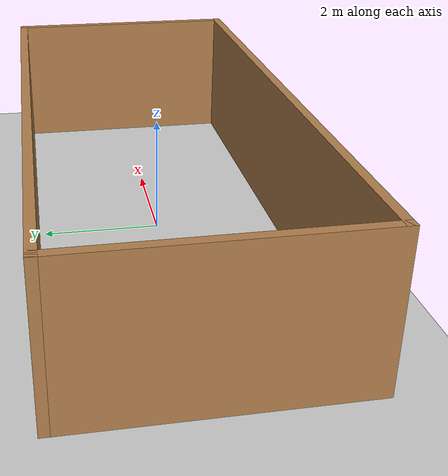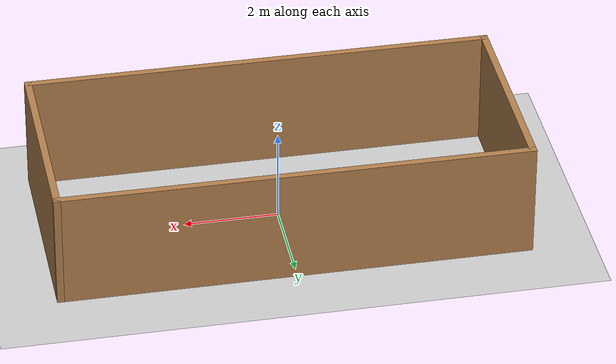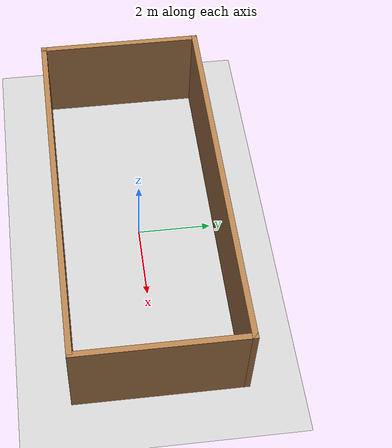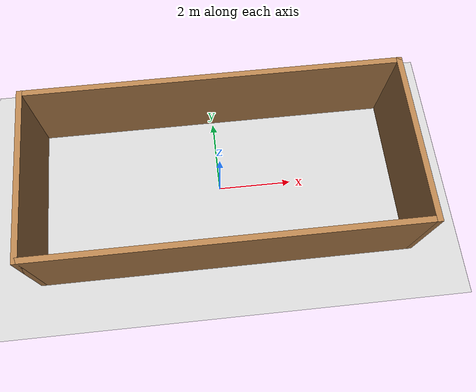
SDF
<sdf version="1.6">
 <world name="default">
  <include><uri>model://ground_plane</uri></include>
  <include><uri>model://sun</uri></include>
  <model name="home1">
   <pose>0.010449 -0.001708 0 0 -0 0</pose>
   <link name="Wall_35">
    <collision name="Wall_35_Collision">
     <geometry><box><size>10 0.15 2.5</size></box></geometry>
     <pose>0 0 1.25 0 -0 0</pose>
    </collision>
    <visual name="Wall_35_Visual">
     <pose>0 0 1.25 0 -0 0</pose>
     <geometry><box><size>10 0.15 2.5</size></box></geometry>
     <material>
      <script><uri>file://media/materials/scripts/gazebo.material</uri><name>Gazebo/Wood</name></script>
      <ambient>1 1 1 1</ambient>
     </material>
    </visual>
    <pose>0 -2.175 0 0 -0 0</pose>
   </link>
   <link name="Wall_36">
    <collision name="Wall_36_Collision">
     <geometry><box><size>4.5 0.15 2.5</size></box></geometry>
     <pose>0 0 1.25 0 -0 0</pose>
    </collision>
    <visual name="Wall_36_Visual">
     <pose>0 0 1.25 0 -0 0</pose>
     <geometry><box><size>4.5 0.15 2.5</size></box></geometry>
     <material>
      <script><uri>file://media/materials/scripts/gazebo.material</uri><name>Gazebo/Wood</name></script>
      <ambient>1 1 1 1</ambient>
     </material>
    </visual>
    <pose>4.925 0 0 0 -0 1.5708</pose>
   </link>
   <link name="Wall_37">
    <collision name="Wall_37_Collision">
     <geometry><box><size>10 0.15 2.5</size></box></geometry>
     <pose>0 0 1.25 0 -0 0</pose>
    </collision>
    <visual name="Wall_37_Visual">
     <pose>0 0 1.25 0 -0 0</pose>
     <geometry><box><size>10 0.15 2.5</size></box></geometry>
     <material>
      <script><uri>file://media/materials/scripts/gazebo.material</uri><name>Gazebo/Wood</name></script>
      <ambient>1 1 1 1</ambient>
     </material>
    </visual>
    <pose>0 2.175 0 0 -0 3.14159</pose>
   </link>
   <link name="Wall_38">
    <collision name="Wall_38_Collision">
     <geometry><box><size>4.5 0.15 2.5</size></box></geometry>
     <pose>0 0 1.25 0 -0 0</pose>
    </collision>
    <visual name="Wall_38_Visual">
     <pose>0 0 1.25 0 -0 0</pose>
     <geometry><box><size>4.5 0.15 2.5</size></box></geometry>
     <material>
      <script><uri>file://media/materials/scripts/gazebo.material</uri><name>Gazebo/Wood</name></script>
      <ambient>1 1 1 1</ambient>
     </material>
    </visual>
    <pose>-4.925 0 0 0 0 -1.5708</pose>
   </link>
   <static>1</static>
  </model>
 </world>
</sdf>
